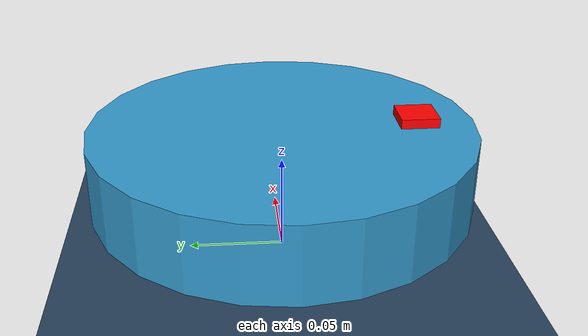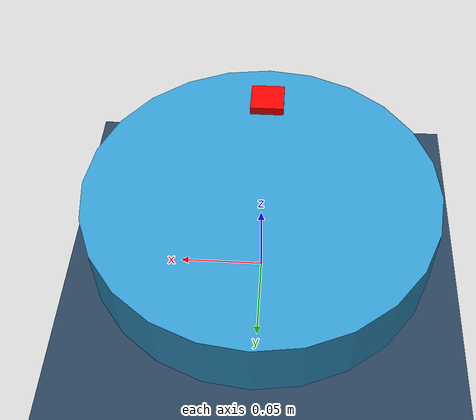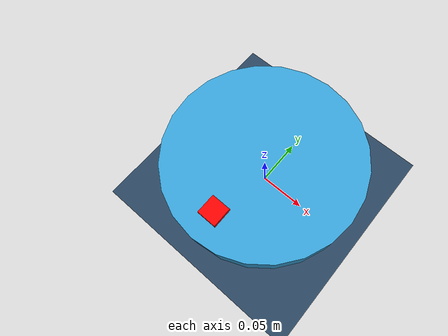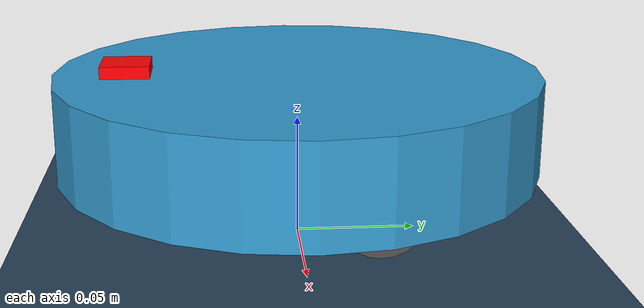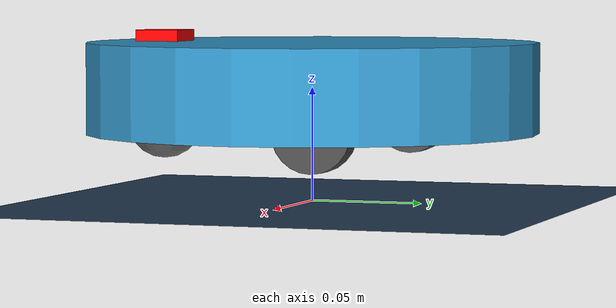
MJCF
<mujoco model="Differential Drive Robot">
  <compiler angle="radian" inertiafromgeom="true"/>

  <option gravity="0 0 -9.81" integrator="RK4" timestep="0.002"/>

  <default>
    <default class="wheel">
      <geom type="cylinder" size="0.035 0.02" contype="1" conaffinity="1"
            friction="1.0 0.05 0.05"/>
    </default>
  </default>

  <asset>
    <texture type="2d" name="groundplane" builtin="checker" mark="edge" rgb1="0.2 0.3 0.4" rgb2="0.1 0.2 0.3"
      markrgb="0.8 0.8 0.8" width="300" height="300"/>
    <material name="groundplane" texture="groundplane" texuniform="true" texrepeat="5 5" reflectance="0.2"/>
  </asset>

  <worldbody>
    <geom name="floor" size="0 0 0.05" type="plane" material="groundplane"/>
    <light directional="true" diffuse=".8 .8 .8" specular="0.2 0.2 0.2" pos="0 0 5" dir="0 0 -1"/>

    <!-- Робот -->
    <body name="chassis" pos="0 0 0.05">

      <!-- Корпус-->
      <joint type="free"/>
      <inertial mass="10.0" pos="0 0 0" diaginertia="0.008 0.008 0.008"/>
      <geom name="base" type="cylinder" size="0.1 0.02" rgba="0.2 0.6 0.8 1" contype="1" conaffinity="0"/>
      <geom type="box" size="0.01 0.01 0.01" pos="0 -0.07 0.015" rgba="1 0 0 1" contype="0" conaffinity="0"/>

      <!-- Левое колесо -->
      <body name="left_wheel" pos="-0.07 0.025 -0.015">
        <inertial mass="0.05" pos="0 0 0" diaginertia="1e-7 1e-7 1e-7"/>
        <joint name="left_wheel_joint" type="hinge" axis="1 0 0" damping="0.001" armature="0.01"/>
        <geom type="cylinder" size="0.0175 0.005" rgba="0.3 0.3 0.3 1" euler="0 1.5708 0"/>
      </body>

      <!-- Правое колесо -->
      <body name="right_wheel" pos="0.07 0.025 -0.015">
        <inertial mass="0.05" pos="0 0 0" diaginertia="1e-7 1e-7 1e-7"/>
        <joint name="right_wheel_joint" type="hinge" axis="1 0 0" damping="0.001" armature="0.01"/>
        <geom type="cylinder" size="0.0175 0.005" rgba="0.3 0.3 0.3 1" euler="0 1.5708 0"/>
      </body>

      <!-- Поворотное колесо спереди -->
      <body name="caster" pos="0 -0.07 -0.015">
            <inertial mass="0.5" pos="0 0 0" diaginertia="1e-7 1e-7 1e-7"/>
            <joint name="caster_joint" type="ball" damping="0.000001"/>
            <geom name="caster_ball" type="sphere" size="0.0175" rgba="0.5 0.5 0.5 1"
                contype="1" conaffinity="1" friction="0.001 0.001 0.001"/>
        </body>
    </body>
  </worldbody>

  <!-- Актуаторы -->
  <actuator>
    <velocity name="left_motor" joint="left_wheel_joint" kv="5" ctrlrange="-50 50" />
    <velocity name="right_motor" joint="right_wheel_joint" kv="5" ctrlrange="-50 50" />
  </actuator>
</mujoco>
